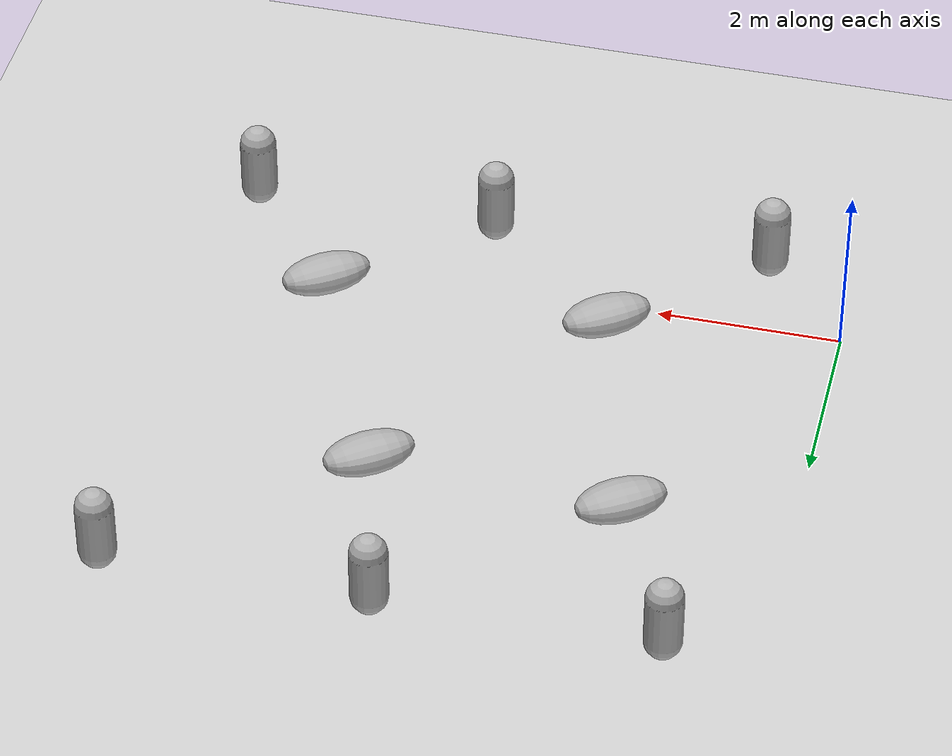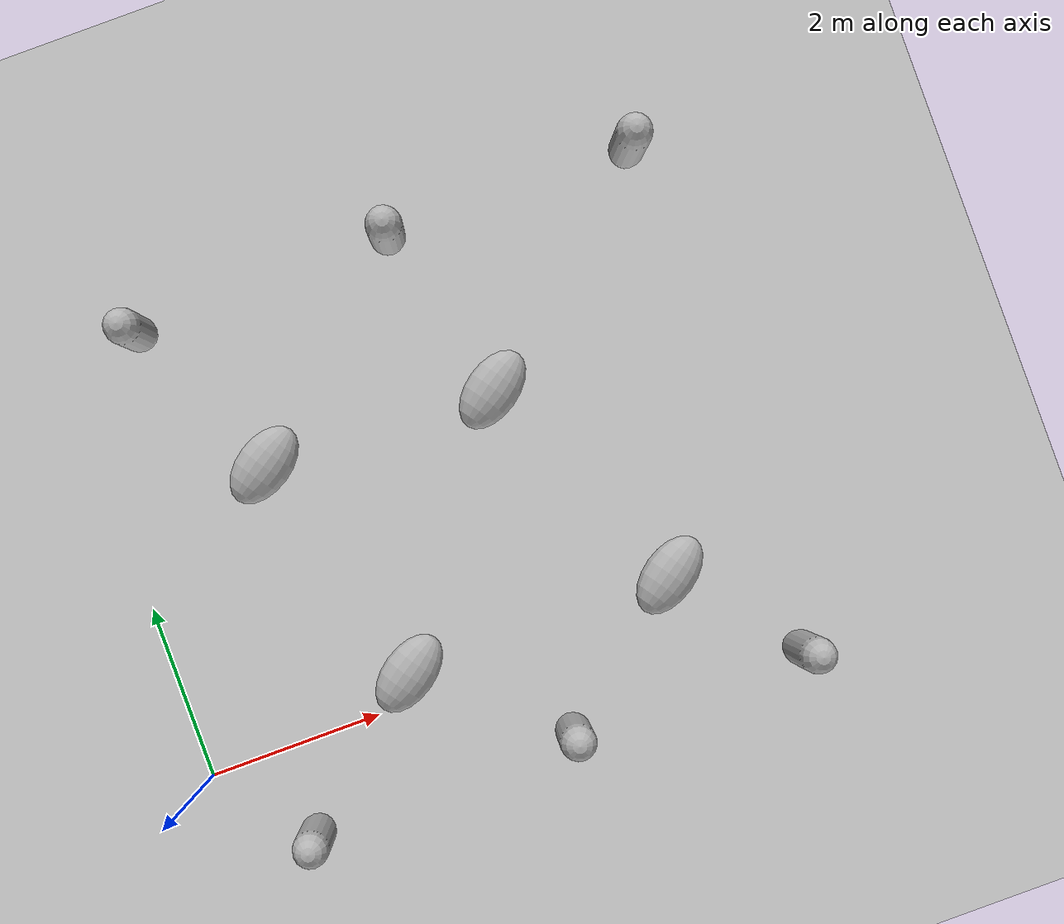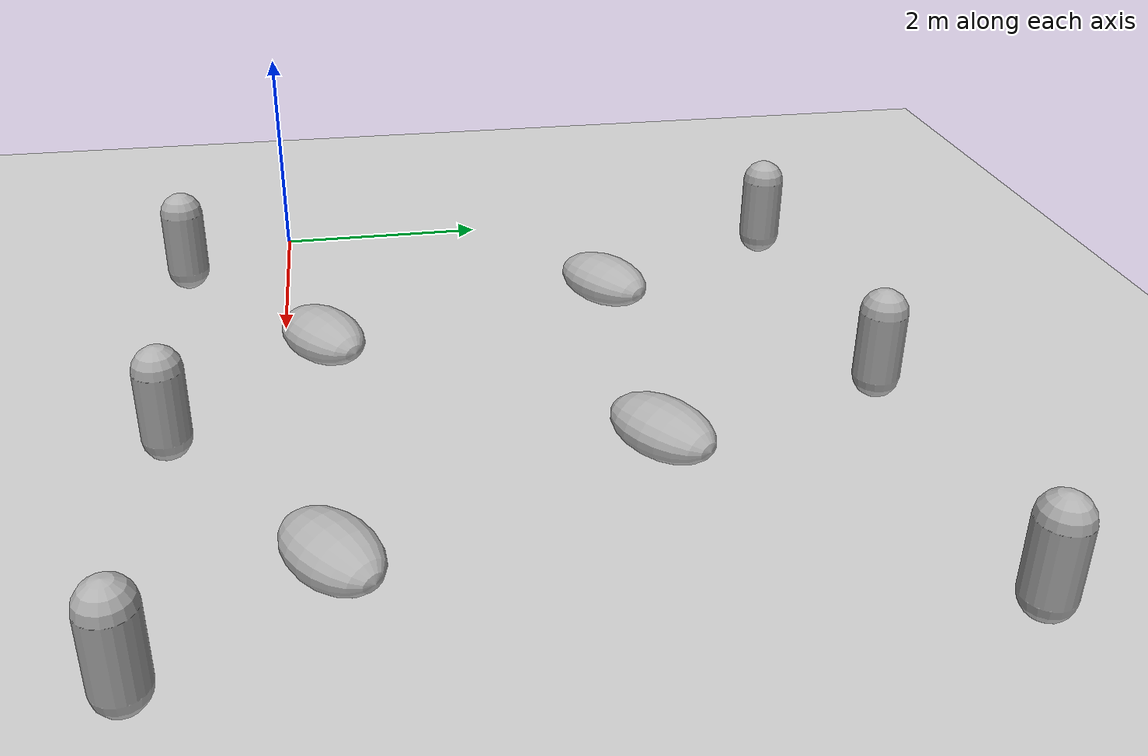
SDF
<sdf version='1.9'>
  <world name='empty'>
    <physics name='1ms' type='ignored'>
      <max_step_size>0.001</max_step_size>
      <real_time_factor>1</real_time_factor>
      <real_time_update_rate>1000</real_time_update_rate>
    </physics>
    <plugin name='gz::sim::systems::Contact' filename='ignition-gazebo-contact-system'/>
    <plugin name='gz::sim::systems::Imu' filename='ignition-gazebo-imu-system'/>
    <plugin name='gz::sim::systems::Physics' filename='ignition-gazebo-physics-system'/>
    <plugin name='gz::sim::systems::SceneBroadcaster' filename='ignition-gazebo-scene-broadcaster-system'/>
    <plugin name='gz::sim::systems::Sensors' filename='ignition-gazebo-sensors-system'/>
    <plugin name='gz::sim::systems::UserCommands' filename='ignition-gazebo-user-commands-system'/>
    <spherical_coordinates>
      <surface_model>EARTH_WGS84</surface_model>
      <world_frame_orientation>ENU</world_frame_orientation>
      <latitude_deg>50.088383999999998</latitude_deg>
      <longitude_deg>19.939128</longitude_deg>
      <elevation>0</elevation>
      <heading_deg>0</heading_deg>
    </spherical_coordinates>
    <gravity>0 0 -9.8</gravity>
    <magnetic_field>6e-06 2.3e-05 -4.2e-05</magnetic_field>
    <atmosphere type='adiabatic'/>
    <scene>
      <ambient>0.4 0.4 0.4 1</ambient>
      <background>0.7 0.7 0.7 1</background>
      <shadows>true</shadows>
    </scene>
    <model name='ground_plane'>
      <static>true</static>
      <link name='link'>
        <collision name='collision'>
          <geometry>
            <plane>
              <normal>0 0 1</normal>
              <size>100 100</size>
            </plane>
          </geometry>
          <surface>
            <friction>
              <ode/>
            </friction>
            <bounce/>
            <contact/>
          </surface>
        </collision>
        <visual name='visual'>
          <geometry>
            <plane>
              <normal>0 0 1</normal>
              <size>100 100</size>
            </plane>
          </geometry>
          <material>
            <ambient>0.8 0.8 0.8 1</ambient>
            <diffuse>0.8 0.8 0.8 1</diffuse>
            <specular>0.8 0.8 0.8 1</specular>
          </material>
        </visual>
        <pose>0 0 0 0 -0 0</pose>
        <inertial>
          <pose>0 0 0 0 -0 0</pose>
          <mass>1</mass>
          <inertia>
            <ixx>1</ixx>
            <ixy>0</ixy>
            <ixz>0</ixz>
            <iyy>1</iyy>
            <iyz>0</iyz>
            <izz>1</izz>
          </inertia>
        </inertial>
        <enable_wind>false</enable_wind>
      </link>
      <pose>0 0 0 0 -0 0</pose>
      <self_collide>false</self_collide>
    </model>

    <model name='capsule'>
      <pose>0.966937 4.94735 0.5 0 -0 0</pose>
      <link name='capsule_link'>
        <inertial>
          <inertia>
            <ixx>0.074153999999999998</ixx>
            <ixy>0</ixy>
            <ixz>0</ixz>
            <iyy>0.074153999999999998</iyy>
            <iyz>0</iyz>
            <izz>0.018769000000000001</izz>
          </inertia>
          <mass>1</mass>
          <pose>0 0 0 0 -0 0</pose>
        </inertial>
        <collision name='capsule_collision'>
          <geometry>
            <capsule>
              <radius>0.20000000000000001</radius>
              <length>0.59999999999999998</length>
            </capsule>
          </geometry>
          <surface>
            <friction>
              <ode/>
            </friction>
            <bounce/>
            <contact/>
          </surface>
        </collision>
        <visual name='capsule_visual'>
          <geometry>
            <capsule>
              <radius>0.20000000000000001</radius>
              <length>0.59999999999999998</length>
            </capsule>
          </geometry>
          <material>
            <ambient>0.3 0.3 0.3 1</ambient>
            <diffuse>0.7 0.7 0.7 1</diffuse>
            <specular>1 1 1 1</specular>
          </material>
        </visual>
        <pose>0 0 0 0 -0 0</pose>
        <enable_wind>false</enable_wind>
      </link>
      <static>false</static>
      <self_collide>false</self_collide>
    </model>
    <model name='capsule_0'>
      <pose>0.950825 -0.962648 0.5 0 -0 0</pose>
      <link name='capsule_link'>
        <inertial>
          <inertia>
            <ixx>0.074153999999999998</ixx>
            <ixy>0</ixy>
            <ixz>0</ixz>
            <iyy>0.074153999999999998</iyy>
            <iyz>0</iyz>
            <izz>0.018769000000000001</izz>
          </inertia>
          <mass>1</mass>
          <pose>0 0 0 0 -0 0</pose>
        </inertial>
        <collision name='capsule_collision'>
          <geometry>
            <capsule>
              <radius>0.20000000000000001</radius>
              <length>0.59999999999999998</length>
            </capsule>
          </geometry>
          <surface>
            <friction>
              <ode/>
            </friction>
            <bounce/>
            <contact/>
          </surface>
        </collision>
        <visual name='capsule_visual'>
          <geometry>
            <capsule>
              <radius>0.20000000000000001</radius>
              <length>0.59999999999999998</length>
            </capsule>
          </geometry>
          <material>
            <ambient>0.3 0.3 0.3 1</ambient>
            <diffuse>0.7 0.7 0.7 1</diffuse>
            <specular>1 1 1 1</specular>
          </material>
        </visual>
        <pose>0 0 0 0 -0 0</pose>
        <enable_wind>false</enable_wind>
      </link>
      <static>false</static>
      <self_collide>false</self_collide>
    </model>
    <model name='capsule_1'>
      <pose>3.9474 5.01889 0.5 0 -0 0</pose>
      <link name='capsule_link'>
        <inertial>
          <inertia>
            <ixx>0.074153999999999998</ixx>
            <ixy>0</ixy>
            <ixz>0</ixz>
            <iyy>0.074153999999999998</iyy>
            <iyz>0</iyz>
            <izz>0.018769000000000001</izz>
          </inertia>
          <mass>1</mass>
          <pose>0 0 0 0 -0 0</pose>
        </inertial>
        <collision name='capsule_collision'>
          <geometry>
            <capsule>
              <radius>0.20000000000000001</radius>
              <length>0.59999999999999998</length>
            </capsule>
          </geometry>
          <surface>
            <friction>
              <ode/>
            </friction>
            <bounce/>
            <contact/>
          </surface>
        </collision>
        <visual name='capsule_visual'>
          <geometry>
            <capsule>
              <radius>0.20000000000000001</radius>
              <length>0.59999999999999998</length>
            </capsule>
          </geometry>
          <material>
            <ambient>0.3 0.3 0.3 1</ambient>
            <diffuse>0.7 0.7 0.7 1</diffuse>
            <specular>1 1 1 1</specular>
          </material>
        </visual>
        <pose>0 0 0 0 -0 0</pose>
        <enable_wind>false</enable_wind>
      </link>
      <static>false</static>
      <self_collide>false</self_collide>
    </model>
    <model name='capsule_2'>
      <pose>4.01141 -0.868056 0.5 0 -0 0</pose>
      <link name='capsule_link'>
        <inertial>
          <inertia>
            <ixx>0.074153999999999998</ixx>
            <ixy>0</ixy>
            <ixz>0</ixz>
            <iyy>0.074153999999999998</iyy>
            <iyz>0</iyz>
            <izz>0.018769000000000001</izz>
          </inertia>
          <mass>1</mass>
          <pose>0 0 0 0 -0 0</pose>
        </inertial>
        <collision name='capsule_collision'>
          <geometry>
            <capsule>
              <radius>0.20000000000000001</radius>
              <length>0.59999999999999998</length>
            </capsule>
          </geometry>
          <surface>
            <friction>
              <ode/>
            </friction>
            <bounce/>
            <contact/>
          </surface>
        </collision>
        <visual name='capsule_visual'>
          <geometry>
            <capsule>
              <radius>0.20000000000000001</radius>
              <length>0.59999999999999998</length>
            </capsule>
          </geometry>
          <material>
            <ambient>0.3 0.3 0.3 1</ambient>
            <diffuse>0.7 0.7 0.7 1</diffuse>
            <specular>1 1 1 1</specular>
          </material>
        </visual>
        <pose>0 0 0 0 -0 0</pose>
        <enable_wind>false</enable_wind>
      </link>
      <static>false</static>
      <self_collide>false</self_collide>
    </model>
    <model name='capsule_3'>
      <pose>6.78642 5.02661 0.5 0 -0 0</pose>
      <link name='capsule_link'>
        <inertial>
          <inertia>
            <ixx>0.074153999999999998</ixx>
            <ixy>0</ixy>
            <ixz>0</ixz>
            <iyy>0.074153999999999998</iyy>
            <iyz>0</iyz>
            <izz>0.018769000000000001</izz>
          </inertia>
          <mass>1</mass>
          <pose>0 0 0 0 -0 0</pose>
        </inertial>
        <collision name='capsule_collision'>
          <geometry>
            <capsule>
              <radius>0.20000000000000001</radius>
              <length>0.59999999999999998</length>
            </capsule>
          </geometry>
          <surface>
            <friction>
              <ode/>
            </friction>
            <bounce/>
            <contact/>
          </surface>
        </collision>
        <visual name='capsule_visual'>
          <geometry>
            <capsule>
              <radius>0.20000000000000001</radius>
              <length>0.59999999999999998</length>
            </capsule>
          </geometry>
          <material>
            <ambient>0.3 0.3 0.3 1</ambient>
            <diffuse>0.7 0.7 0.7 1</diffuse>
            <specular>1 1 1 1</specular>
          </material>
        </visual>
        <pose>0 0 0 0 -0 0</pose>
        <enable_wind>false</enable_wind>
      </link>
      <static>false</static>
      <self_collide>false</self_collide>
    </model>
    <model name='capsule_4'>
      <pose>6.71978 -0.867058 0.5 0 -0 0</pose>
      <link name='capsule_link'>
        <inertial>
          <inertia>
            <ixx>0.074153999999999998</ixx>
            <ixy>0</ixy>
            <ixz>0</ixz>
            <iyy>0.074153999999999998</iyy>
            <iyz>0</iyz>
            <izz>0.018769000000000001</izz>
          </inertia>
          <mass>1</mass>
          <pose>0 0 0 0 -0 0</pose>
        </inertial>
        <collision name='capsule_collision'>
          <geometry>
            <capsule>
              <radius>0.20000000000000001</radius>
              <length>0.59999999999999998</length>
            </capsule>
          </geometry>
          <surface>
            <friction>
              <ode/>
            </friction>
            <bounce/>
            <contact/>
          </surface>
        </collision>
        <visual name='capsule_visual'>
          <geometry>
            <capsule>
              <radius>0.20000000000000001</radius>
              <length>0.59999999999999998</length>
            </capsule>
          </geometry>
          <material>
            <ambient>0.3 0.3 0.3 1</ambient>
            <diffuse>0.7 0.7 0.7 1</diffuse>
            <specular>1 1 1 1</specular>
          </material>
        </visual>
        <pose>0 0 0 0 -0 0</pose>
        <enable_wind>false</enable_wind>
      </link>
      <static>false</static>
      <self_collide>false</self_collide>
    </model>
    <model name='ellipsoid'>
      <pose>1.77587 3.10027 0.186668 1.5708 -1.37749 -0.983529</pose>
      <link name='ellipsoid_link'>
        <inertial>
          <inertia>
            <ixx>0.068000000000000005</ixx>
            <ixy>0</ixy>
            <ixz>0</ixz>
            <iyy>0.058000000000000003</iyy>
            <iyz>0</iyz>
            <izz>0.025999999999999999</izz>
          </inertia>
          <mass>1</mass>
          <pose>0 0 0 0 -0 0</pose>
        </inertial>
        <collision name='ellipsoid_collision'>
          <geometry>
            <ellipsoid>
              <radii>0.2 0.3 0.5</radii>
            </ellipsoid>
          </geometry>
          <surface>
            <friction>
              <ode/>
            </friction>
            <bounce/>
            <contact/>
          </surface>
        </collision>
        <visual name='ellipsoid_visual'>
          <geometry>
            <ellipsoid>
              <radii>0.2 0.3 0.5</radii>
            </ellipsoid>
          </geometry>
          <material>
            <ambient>0.3 0.3 0.3 1</ambient>
            <diffuse>0.7 0.7 0.7 1</diffuse>
            <specular>1 1 1 1</specular>
          </material>
        </visual>
        <pose>0 0 0 0 -0 0</pose>
        <enable_wind>false</enable_wind>
      </link>
      <static>false</static>
      <self_collide>false</self_collide>
    </model>
    <model name='ellipsoid_0'>
      <pose>2.5043 0.353842 0.186668 1.5708 -1.37749 -0.965355</pose>
      <link name='ellipsoid_link'>
        <inertial>
          <inertia>
            <ixx>0.068000000000000005</ixx>
            <ixy>0</ixy>
            <ixz>0</ixz>
            <iyy>0.058000000000000003</iyy>
            <iyz>0</iyz>
            <izz>0.025999999999999999</izz>
          </inertia>
          <mass>1</mass>
          <pose>0 0 0 0 -0 0</pose>
        </inertial>
        <collision name='ellipsoid_collision'>
          <geometry>
            <ellipsoid>
              <radii>0.2 0.3 0.5</radii>
            </ellipsoid>
          </geometry>
          <surface>
            <friction>
              <ode/>
            </friction>
            <bounce/>
            <contact/>
          </surface>
        </collision>
        <visual name='ellipsoid_visual'>
          <geometry>
            <ellipsoid>
              <radii>0.2 0.3 0.5</radii>
            </ellipsoid>
          </geometry>
          <material>
            <ambient>0.3 0.3 0.3 1</ambient>
            <diffuse>0.7 0.7 0.7 1</diffuse>
            <specular>1 1 1 1</specular>
          </material>
        </visual>
        <pose>0 0 0 0 -0 0</pose>
        <enable_wind>false</enable_wind>
      </link>
      <static>false</static>
      <self_collide>false</self_collide>
    </model>
    <model name='ellipsoid_1'>
      <pose>4.46563 3.01897 0.186668 1.5708 -1.37749 -0.961658</pose>
      <link name='ellipsoid_link'>
        <inertial>
          <inertia>
            <ixx>0.068000000000000005</ixx>
            <ixy>0</ixy>
            <ixz>0</ixz>
            <iyy>0.058000000000000003</iyy>
            <iyz>0</iyz>
            <izz>0.025999999999999999</izz>
          </inertia>
          <mass>1</mass>
          <pose>0 0 0 0 -0 0</pose>
        </inertial>
        <collision name='ellipsoid_collision'>
          <geometry>
            <ellipsoid>
              <radii>0.2 0.3 0.5</radii>
            </ellipsoid>
          </geometry>
          <surface>
            <friction>
              <ode/>
            </friction>
            <bounce/>
            <contact/>
          </surface>
        </collision>
        <visual name='ellipsoid_visual'>
          <geometry>
            <ellipsoid>
              <radii>0.2 0.3 0.5</radii>
            </ellipsoid>
          </geometry>
          <material>
            <ambient>0.3 0.3 0.3 1</ambient>
            <diffuse>0.7 0.7 0.7 1</diffuse>
            <specular>1 1 1 1</specular>
          </material>
        </visual>
        <pose>0 0 0 0 -0 0</pose>
        <enable_wind>false</enable_wind>
      </link>
      <static>false</static>
      <self_collide>false</self_collide>
    </model>
    <model name='ellipsoid_2'>
      <pose>5.62094 0.391774 0.186668 1.5708 -1.37749 -0.962137</pose>
      <link name='ellipsoid_link'>
        <inertial>
          <inertia>
            <ixx>0.068000000000000005</ixx>
            <ixy>0</ixy>
            <ixz>0</ixz>
            <iyy>0.058000000000000003</iyy>
            <iyz>0</iyz>
            <izz>0.025999999999999999</izz>
          </inertia>
          <mass>1</mass>
          <pose>0 0 0 0 -0 0</pose>
        </inertial>
        <collision name='ellipsoid_collision'>
          <geometry>
            <ellipsoid>
              <radii>0.2 0.3 0.5</radii>
            </ellipsoid>
          </geometry>
          <surface>
            <friction>
              <ode/>
            </friction>
            <bounce/>
            <contact/>
          </surface>
        </collision>
        <visual name='ellipsoid_visual'>
          <geometry>
            <ellipsoid>
              <radii>0.2 0.3 0.5</radii>
            </ellipsoid>
          </geometry>
          <material>
            <ambient>0.3 0.3 0.3 1</ambient>
            <diffuse>0.7 0.7 0.7 1</diffuse>
            <specular>1 1 1 1</specular>
          </material>
        </visual>
        <pose>0 0 0 0 -0 0</pose>
        <enable_wind>false</enable_wind>
      </link>
      <static>false</static>
      <self_collide>false</self_collide>
    </model>
    <light name='sun' type='directional'>
      <pose>0 0 10 0 -0 0</pose>
      <cast_shadows>true</cast_shadows>
      <intensity>1</intensity>
      <direction>-0.5 0.1 -0.9</direction>
      <diffuse>0.8 0.8 0.8 1</diffuse>
      <specular>0.2 0.2 0.2 1</specular>
      <attenuation>
        <range>1000</range>
        <linear>0.01</linear>
        <constant>0.90000000000000002</constant>
        <quadratic>0.001</quadratic>
      </attenuation>
      <spot>
        <inner_angle>0</inner_angle>
        <outer_angle>0</outer_angle>
        <falloff>0</falloff>
      </spot>
    </light>
  </world>
</sdf>
